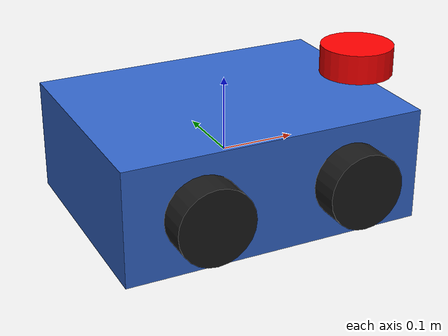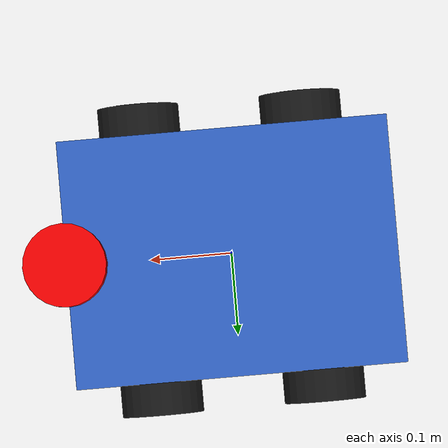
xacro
<?xml version="1.0"?>
<robot name="mecabot" xmlns:xacro="http://www.ros.org/wiki/xacro">

  <xacro:property name="chassis_width" value="0.3"/>
  <xacro:property name="chassis_length" value="0.4"/>
  <xacro:property name="chassis_height" value="0.15"/>
  <xacro:property name="wheel_radius" value="0.05"/>
  <xacro:property name="wheel_width" value="0.04"/>

  <!-- Base Link (Chassis) -->
  <link name="base_link">
    <visual>
      <geometry><box size="${chassis_length} ${chassis_width} ${chassis_height}"/></geometry>
      <material name="blue"><color rgba="0.2 0.4 0.8 1"/></material>
    </visual>
    <collision><geometry><box size="${chassis_length} ${chassis_width} ${chassis_height}"/></geometry></collision>
    <inertial><mass value="5.0"/><inertia ixx="0.1" ixy="0" ixz="0" iyy="0.1" iyz="0" izz="0.1"/></inertial>
  </link>

  <!-- Wheel Macro -->
  <xacro:macro name="wheel_and_transmission" params="prefix side x_offset y_offset">
    <link name="${prefix}_${side}_wheel_link">
      <visual>
        <origin xyz="0 0 0" rpy="1.5707 0 0"/>
        <geometry><cylinder radius="${wheel_radius}" length="${wheel_width}"/></geometry>
        <material name="black"><color rgba="0.1 0.1 0.1 1"/></material>
      </visual>
      <collision>
        <origin xyz="0 0 0" rpy="1.5707 0 0"/>
        <geometry><cylinder radius="${wheel_radius}" length="${wheel_width}"/></geometry>
      </collision>
      <inertial><mass value="0.5"/><inertia ixx="0.01" ixy="0" ixz="0" iyy="0.01" iyz="0" izz="0.02"/></inertial>
    </link>
    <joint name="${prefix}_${side}_wheel_joint" type="continuous">
      <parent link="base_link"/>
      <child link="${prefix}_${side}_wheel_link"/>
      <origin xyz="${x_offset} ${y_offset} 0" rpy="0 0 0"/>
      <axis xyz="0 1 0"/>
    </joint>
    <transmission name="${prefix}_${side}_wheel_trans">
      <type>transmission_interface/SimpleTransmission</type>
      <joint name="${prefix}_${side}_wheel_joint">
        <hardwareInterface>hardware_interface/VelocityJointInterface</hardwareInterface>
      </joint>
      <actuator name="${prefix}_${side}_wheel_motor">
        <hardwareInterface>hardware_interface/VelocityJointInterface</hardwareInterface>
        <mechanicalReduction>1</mechanicalReduction>
      </actuator>
    </transmission>
  </xacro:macro>

  <xacro:wheel_and_transmission prefix="front" side="left" x_offset="0.1" y_offset="0.17" />
  <xacro:wheel_and_transmission prefix="front" side="right" x_offset="0.1" y_offset="-0.17" />
  <xacro:wheel_and_transmission prefix="rear" side="left" x_offset="-0.1" y_offset="0.17" />
  <xacro:wheel_and_transmission prefix="rear" side="right" x_offset="-0.1" y_offset="-0.17" />

  <!-- Lidar Sensor -->
  <link name="laser_link">
    <visual><geometry><cylinder radius="0.05" length="0.04"/></geometry><material name="red"><color rgba="1 0 0 1"/></material></visual>
    <collision><geometry><cylinder radius="0.05" length="0.04"/></geometry></collision>
    <inertial><mass value="0.1"/><inertia ixx="0.001" ixy="0" ixz="0" iyy="0.001" iyz="0" izz="0.001"/></inertial>
  </link>
  <joint name="laser_joint" type="fixed">
    <parent link="base_link"/>
    <child link="laser_link"/>
    <origin xyz="${chassis_length/2} 0 ${chassis_height/2 + 0.02}" rpy="0 0 0"/>
  </joint>

  <!-- GAZEBO PLUGINS FOR GALACTIC -->
  <gazebo>
    <plugin name="gazebo_ros_diff_drive" filename="libgazebo_ros_diff_drive.so">
      <commandTopic>cmd_vel</commandTopic>
      <odometryTopic>odom</odometryTopic>
      <odometryFrame>odom</odometryFrame>
      <robotBaseFrame>base_link</robotBaseFrame>

      <!-- *** FIX 1: SPECIFY ALL FOUR JOINTS *** -->
      <leftJoint>front_left_wheel_joint</leftJoint>
      <leftJoint>rear_left_wheel_joint</leftJoint>
      <rightJoint>front_right_wheel_joint</rightJoint>
      <rightJoint>rear_right_wheel_joint</rightJoint>

      <wheelSeparation>${chassis_width + 0.04}</wheelSeparation>
      <wheelDiameter>${2*wheel_radius}</wheelDiameter>
      <updateRate>100</updateRate>
    </plugin>
  </gazebo>

  <gazebo reference="laser_link">
    <sensor type="ray" name="ray_sensor">
      <pose>0 0 0 0 0 0</pose>
      <visualize>true</visualize>
      <update_rate>10</update_rate>
      <ray>
        <scan>
          <horizontal>
            <samples>360</samples>
            <resolution>1</resolution>
            <min_angle>-3.14</min_angle>
            <max_angle>3.14</max_angle>
          </horizontal>
        </scan>
        <range>
          <min>0.1</min>
          <max>12.0</max>
          <resolution>0.01</resolution>
        </range>
      </ray>
      <!-- *** FIX 2: USE THE CORRECT LIDAR PLUGIN NAME *** -->
      <plugin name="gazebo_ros_laser_controller" filename="libgazebo_ros_laser.so">
        <topicName>laser_scan</topicName>
        <frameName>laser_link</frameName>
      </plugin>
    </sensor>
  </gazebo>
</robot>
